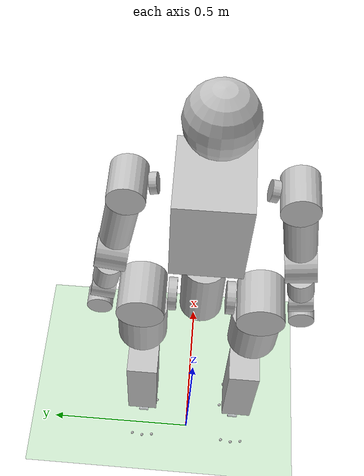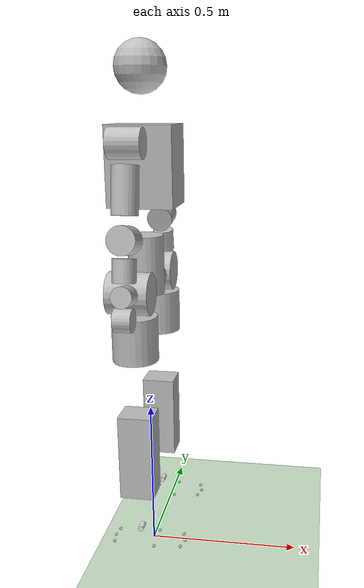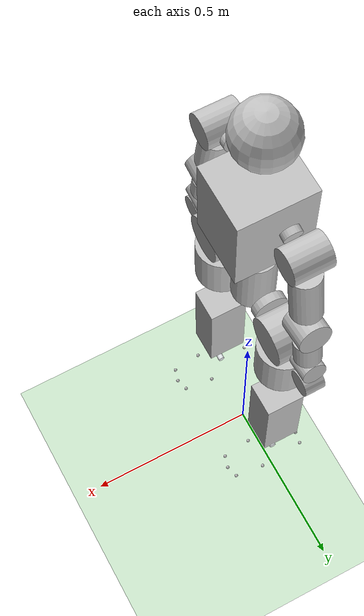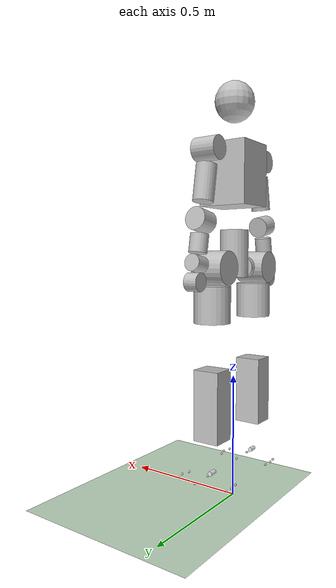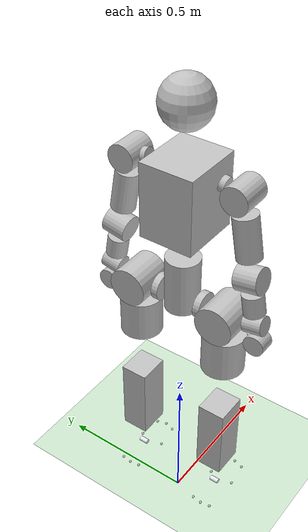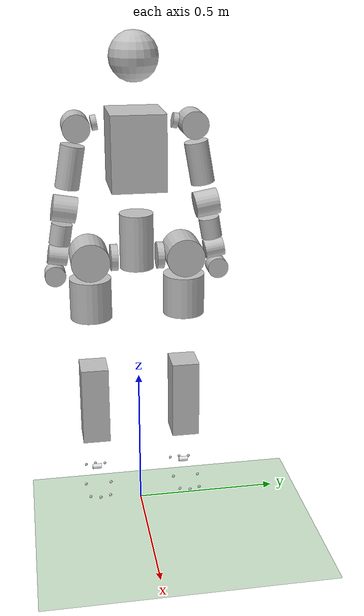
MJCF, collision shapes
<mujoco model="tsts2">
    <compiler angle="radian" meshdir="../meshes/"/>

    <default>
        <default class="tsts2">
            <geom friction="0.5" margin="0.001"/>
            <joint type="hinge" armature="0.1" frictionloss="0.1" limited="true"/>
            <default class="visual">
                <geom type="mesh" contype="0" conaffinity="0" group="2" material="dark"/>
            </default>
            <default class="collision">
                <geom group="0" type="capsule" mass="0" density="0" />
                <default class="foot">
                    <geom type="sphere" priority="1" solimp="0.015 1 0.031" condim="6"  friction="0.8 0.02 0.01" size="0.025" pos="0.019 0 -0.105" quat="1 0 0 0" rgba="0.189804 0.176471 0.129412 1" />
                </default>
            </default>
            <site size="0.001" rgba="0.5 0.5 0.5 0.3" group="4"/>
        </default>
    </default>

    <asset>
        <mesh name="pelvis" content_type="model/stl" file="pelvis.STL"/>
        <mesh name="left_hip_pitch_link" content_type="model/stl" file="left_hip_pitch_link.STL"/>
        <mesh name="left_hip_roll_link" content_type="model/stl" file="left_hip_roll_link.STL"/>
        <mesh name="left_hip_yaw_link" content_type="model/stl" file="left_hip_yaw_link.STL"/>
        <mesh name="left_knee_link" content_type="model/stl" file="left_knee_link.STL"/>
        <mesh name="left_ankle_pitch_link" content_type="model/stl" file="left_ankle_pitch_link.STL"/>
        <mesh name="left_ankle_roll_link" content_type="model/stl" file="left_ankle_roll_link.STL"/>
        <mesh name="right_hip_pitch_link" content_type="model/stl" file="right_hip_pitch_link.STL"/>
        <mesh name="right_hip_roll_link" content_type="model/stl" file="right_hip_roll_link.STL"/>
        <mesh name="right_hip_yaw_link" content_type="model/stl" file="right_hip_yaw_link.STL"/>
        <mesh name="right_knee_link" content_type="model/stl" file="right_knee_link.STL"/>
        <mesh name="right_ankle_pitch_link" content_type="model/stl" file="right_ankle_pitch_link.STL"/>
        <mesh name="right_ankle_roll_link" content_type="model/stl" file="right_ankle_roll_link.STL"/>
        <mesh name="torso_link" content_type="model/stl" file="torso_link.STL"/>
        <mesh name="head_link" content_type="model/stl" file="head_link.STL"/>
        <mesh name="left_shoulder_pitch_link" content_type="model/stl" file="left_shoulder_pitch_link.STL"/>
        <mesh name="left_shoulder_roll_link" content_type="model/stl" file="left_shoulder_roll_link.STL"/>
        <mesh name="left_shoulder_yaw_link" content_type="model/stl" file="left_shoulder_yaw_link.STL"/>
        <mesh name="left_elbow_link" content_type="model/stl" file="left_elbow_link.STL"/>
        <mesh name="left_wrist_yaw_link" content_type="model/stl" file="left_wrist_yaw_link.STL"/>
        <mesh name="left_wrist_pitch_link" content_type="model/stl" file="left_wrist_pitch_link.STL"/>
        <mesh name="left_wrist_roll_link" content_type="model/stl" file="left_wrist_roll_link.STL"/>
        <mesh name="right_shoulder_pitch_link" content_type="model/stl" file="right_shoulder_pitch_link.STL"/>
        <mesh name="right_shoulder_roll_link" content_type="model/stl" file="right_shoulder_roll_link.STL"/>
        <mesh name="right_shoulder_yaw_link" content_type="model/stl" file="right_shoulder_yaw_link.STL"/>
        <mesh name="right_elbow_link" content_type="model/stl" file="right_elbow_link.STL"/>
        <mesh name="right_wrist_yaw_link" content_type="model/stl" file="right_wrist_yaw_link.STL"/>
        <mesh name="right_wrist_pitch_link" content_type="model/stl" file="right_wrist_pitch_link.STL"/>
        <mesh name="right_wrist_roll_link" content_type="model/stl" file="right_wrist_roll_link.STL"/>

        <texture name="texplane" type="2d" builtin="checker" rgb1=".2 .3 .4" rgb2=".1 0.15 0.2" width="100" height="100"/>
        <material name="MatPlane" reflectance="0.5" texture="texplane" texrepeat="1 1" texuniform="true"/>
    </asset>

    <worldbody>

            <geom name="floor" friction="1 .1 .1" pos="0 0 0" size="500 500 0.125" type="plane" material="MatPlane" condim="3" conaffinity="1" contype="1" group="2" rgba="0.8 0.9 0.8 1"></geom>

            <light cutoff="100" diffuse="1 1 1" dir="-0 0 -1.3" directional="true" exponent="1" pos="0 0 1.3" specular=".1 .1 .1" castshadow="false"/>
            <body name="pelvis" pos="0 0 1.0" childclass="tsts2">
                <inertial pos="-3.1659855E-03  0.0000000 -0.0930236E-01" quat="0.498303 0.499454 -0.500496 0.501741" mass="6.7964049" diaginertia="2.2011165e-02 3.9641975e-02 3.5762219e-02" />
                <joint name="floating_base_joint" type="free" limited="false" actuatorfrclimited="false"/>
                <site name='imu' size='0.01' pos='0.0 0 0.0'/>

                <!-- fill below content to finish urdf2mjcf -->

                <geom pos="0 0 0.1" quat="1 0 0 0" type="mesh" contype="0" conaffinity="0" group="1" density="0" rgba="0.752941 0.752941 0.752941 1" mesh="pelvis"/>
                <geom size="0.0572 0.09415" type="cylinder" rgba="0.752941 0.752941 0.752941 1"/>
                <body name="left_hip_pitch_link" pos="0 0.068 -0.056">
                    <inertial pos="-0.0201683 0.0822161 0" quat="0.704101 0.704101 0.0651255 0.0651255" mass="2.42773" diaginertia="0.00623422 0.00516186 0.00352913"/>
                    <joint name="left_hip_pitch_joint" pos="0 0 0" axis="0 1 0" range="-1.5 1.5" actuatorfrcrange="-300 300" damping="5"/>
                    <geom type="mesh" contype="0" conaffinity="0" group="1" density="0" rgba="0.752941 0.752941 0.752941 1" mesh="left_hip_pitch_link"/>
                    <geom size="0.045 0.0117" pos="0 0.01 0" quat="0.707388 0.706825 0 0" type="cylinder" rgba="0.752941 0.752941 0.752941 1"/>
                    <body name="left_hip_roll_link" pos="0 0.092 0">
                        <inertial pos="-0.00231162 -0.00036364 -0.081422" quat="0.986446 -0.0128273 0.163575 0.00198067" mass="3.15516" diaginertia="0.0127869 0.0114832 0.00651926"/>
                        <joint name="left_hip_roll_joint" pos="0 0 0" axis="1 0 0" range="-0.25 2.8" actuatorfrcrange="-300 300" damping="5"/>
                        <geom type="mesh" contype="0" conaffinity="0" group="1" density="0" rgba="0.752941 0.752941 0.752941 1" mesh="left_hip_roll_link"/>
                        <geom size="0.065 0.065" pos="-0.01 0 0" quat="0.707388 0 0.706825 0" type="cylinder" rgba="0.752941 0.752941 0.752941 1"/>
                        <body name="left_hip_yaw_link" pos="0 0 -0.1395">
                            <inertial pos="0.00642805 -0.00358464 -0.184496" quat="0.693667 -0.00118225 0.0183074 0.720062" mass="3.35223" diaginertia="0.0396254 0.0381203 0.0071533"/>
                            <joint name="left_hip_yaw_joint" pos="0 0 0" axis="0 0 1" range="-1.2 2.6" actuatorfrcrange="-300 300" damping="5"/>
                            <geom type="mesh" contype="0" conaffinity="0" group="1" density="0" rgba="0.752941 0.752941 0.752941 1" mesh="left_hip_yaw_link"/>
                            <geom size="0.0708 0.071" type="cylinder" rgba="0.752941 0.752941 0.752941 1"/>
                            <body name="left_knee_link" pos="0 0 -0.26">
                                <inertial pos="0.00978041 -0.00121598 -0.110007" quat="0.690926 0.000275879 -0.0112168 0.722838" mass="5.38282" diaginertia="0.0720794 0.0710269 0.00814125"/>
                                <joint name="left_knee_joint" pos="0 0 0" axis="0 1 0" range="0 2.27" actuatorfrcrange="-300 300" damping="5"/>
                                <geom type="mesh" contype="0" conaffinity="0" group="1" density="0" rgba="0.752941 0.752941 0.752941 1" mesh="left_knee_link"/>
                                <geom size="0.0545 0.0475 0.139" pos="0 0 -0.13" type="box" rgba="0.752941 0.752941 0.752941 1"/>
                                <body name="left_ankle_pitch_link" pos="0 0 -0.4">
                                    <inertial pos="-0.000310026 1.10617e-05 -0.0042516" quat="0.691176 0.691169 0.149264 -0.14927" mass="0.163759" diaginertia="5.58316e-05 5.50037e-05 2.3119e-05"/>
                                    <joint name="left_ankle_pitch_joint" pos="0 0 0" axis="0 1 0" range="-1 0.43" actuatorfrcrange="-200 200" damping="2"/>
                                    <geom type="mesh" contype="0" conaffinity="0" group="1" density="0" rgba="0.898039 0.917647 0.929412 1" mesh="left_ankle_pitch_link"/>
                                    <geom size="0.009 0.016" quat="0.707388 0.706825 0 0" type="cylinder" rgba="0.898039 0.917647 0.929412 1"/>
                                    <body name="left_ankle_roll_link" pos="0 0 -0.01">
                                        <inertial pos="0.0178042 0 -0.022945" quat="0 0.734587 0 0.678514" mass="0.328402" diaginertia="0.00147826 0.00138491 0.000224893"/>
                                        <joint name="left_ankle_roll_joint" pos="0 0 0" axis="1 0 0" range="-0.43 0.43" actuatorfrcrange="-200 200" damping="2"/>
                                        <geom type="mesh" contype="0" conaffinity="0" group="1" density="0" rgba="0.752941 0.752941 0.752941 1" mesh="left_ankle_roll_link"/>
                                        <geom size="0.005" pos="-0.085 0.035 -0.03" rgba="0.752941 0.752941 0.752941 1"/>
                                        <geom size="0.005" pos="-0.085 -0.035 -0.03" rgba="0.752941 0.752941 0.752941 1"/>
                                        <geom size="0.005" pos="0.135 0.035 -0.03" rgba="0.752941 0.752941 0.752941 1"/>
                                        <geom size="0.005" pos="0.135 -0.035 -0.03" rgba="0.752941 0.752941 0.752941 1"/>
                                        <geom size="0.005" pos="0.05 -0.045 -0.03" rgba="0.752941 0.752941 0.752941 1"/>
                                        <geom size="0.005" pos="0.05 0.045 -0.03" rgba="0.752941 0.752941 0.752941 1"/>
                                        <geom size="0.005" pos="0.145 0 -0.03" rgba="0.752941 0.752941 0.752941 1"/>
                                        <geom size="0.005" pos="-0.09 0 -0.03" rgba="0.752941 0.752941 0.752941 1"/>
                                    </body>
                                </body>
                            </body>
                        </body>
                    </body>
                </body>
                <body name="right_hip_pitch_link" pos="0 -0.068 -0.056">
                    <inertial pos="-0.0201683 -0.0822161 0" quat="0.704101 0.704101 -0.0651255 -0.0651255" mass="2.42773" diaginertia="0.00623422 0.00516186 0.00352913"/>
                    <joint name="right_hip_pitch_joint" pos="0 0 0" axis="0 1 0" range="-1.5 1.5" actuatorfrcrange="-300 300" damping="5"/>
                    <geom type="mesh" contype="0" conaffinity="0" group="1" density="0" rgba="0.752941 0.752941 0.752941 1" mesh="right_hip_pitch_link"/>
                    <geom size="0.045 0.0117" pos="0 -0.01 0" quat="0.707388 0.706825 0 0" type="cylinder" rgba="0.752941 0.752941 0.752941 1"/>
                    <body name="right_hip_roll_link" pos="0 -0.092 0">
                        <inertial pos="-0.00231164 0.000363676 -0.0814221" quat="0.986446 0.0128271 0.163575 -0.00197953" mass="3.15516" diaginertia="0.0127868 0.0114832 0.00651926"/>
                        <joint name="right_hip_roll_joint" pos="0 0 0" axis="1 0 0" range="-2.8 0.25" actuatorfrcrange="-300 300" damping="5"/>
                        <geom type="mesh" contype="0" conaffinity="0" group="1" density="0" rgba="0.752941 0.752941 0.752941 1" mesh="right_hip_roll_link"/>
                        <geom size="0.065 0.065" pos="-0.01 0 0" quat="0.707388 0 0.706825 0" type="cylinder" rgba="0.752941 0.752941 0.752941 1"/>
                        <body name="right_hip_yaw_link" pos="0 0 -0.1395">
                            <inertial pos="0.00642805 0.00358464 -0.184496" quat="0.720062 0.0183074 -0.00118225 0.693667" mass="3.35223" diaginertia="0.0396254 0.0381203 0.0071533"/>
                            <joint name="right_hip_yaw_joint" pos="0 0 0" axis="0 0 1" range="-2.6 1.2" actuatorfrcrange="-300 300" damping="5"/>
                            <geom type="mesh" contype="0" conaffinity="0" group="1" density="0" rgba="0.752941 0.752941 0.752941 1" mesh="right_hip_yaw_link"/>
                            <geom size="0.0708 0.071" type="cylinder" rgba="0.752941 0.752941 0.752941 1"/>
                            <body name="right_knee_link" pos="0 0 -0.26">
                                <inertial pos="0.00978041 0.00121598 -0.110007" quat="0.722838 -0.0112168 0.00027589 0.690926" mass="5.38282" diaginertia="0.0720794 0.0710269 0.00814125"/>
                                <joint name="right_knee_joint" pos="0 0 0" axis="0 1 0" range="0 2.27" actuatorfrcrange="-300 300" damping="5"/>
                                <geom type="mesh" contype="0" conaffinity="0" group="1" density="0" rgba="0.752941 0.752941 0.752941 1" mesh="right_knee_link"/>
                                <geom size="0.0545 0.0475 0.139" pos="0 0 -0.13" type="box" rgba="0.752941 0.752941 0.752941 1"/>
                                <body name="right_ankle_pitch_link" pos="0 0 -0.4">
                                    <inertial pos="-0.000310026 1.10617e-05 -0.0042516" quat="0.691176 0.691169 0.149264 -0.14927" mass="0.163759" diaginertia="5.58316e-05 5.50037e-05 2.3119e-05"/>
                                    <joint name="right_ankle_pitch_joint" pos="0 0 0" axis="0 1 0" range="-1 0.43" actuatorfrcrange="-200 200" damping="2"/>
                                    <geom type="mesh" contype="0" conaffinity="0" group="1" density="0" rgba="0.898039 0.917647 0.929412 1" mesh="right_ankle_pitch_link"/>
                                    <geom size="0.009 0.016" quat="0.707388 0.706825 0 0" type="cylinder" rgba="0.898039 0.917647 0.929412 1"/>
                                    <body name="right_ankle_roll_link" pos="0 0 -0.01">
                                        <inertial pos="0.0178042 0 -0.022945" quat="0 0.734587 0 0.678514" mass="0.328402" diaginertia="0.00147826 0.00138491 0.000224893"/>
                                        <joint name="right_ankle_roll_joint" pos="0 0 0" axis="1 0 0" range="-0.43 0.43" actuatorfrcrange="-200 200" damping="2"/>
                                        <geom type="mesh" contype="0" conaffinity="0" group="1" density="0" rgba="0.752941 0.752941 0.752941 1" mesh="right_ankle_roll_link"/>
                                        <geom size="0.005" pos="-0.085 0.035 -0.03" rgba="0.752941 0.752941 0.752941 1"/>
                                        <geom size="0.005" pos="-0.085 -0.035 -0.03" rgba="0.752941 0.752941 0.752941 1"/>
                                        <geom size="0.005" pos="0.135 0.035 -0.03" rgba="0.752941 0.752941 0.752941 1"/>
                                        <geom size="0.005" pos="0.135 -0.035 -0.03" rgba="0.752941 0.752941 0.752941 1"/>
                                        <geom size="0.005" pos="0.05 -0.045 -0.03" rgba="0.752941 0.752941 0.752941 1"/>
                                        <geom size="0.005" pos="0.05 0.045 -0.03" rgba="0.752941 0.752941 0.752941 1"/>
                                        <geom size="0.005" pos="0.145 0 -0.03" rgba="0.752941 0.752941 0.752941 1"/>
                                        <geom size="0.005" pos="-0.09 0 -0.03" rgba="0.752941 0.752941 0.752941 1"/>
                                    </body>
                                </body>
                            </body>
                        </body>
                    </body>
                </body>
                <body name="torso_link" pos="0 0 0.1">
                    <inertial pos="-0.00142182 0.000240176 0.254143" quat="0.999922 -0.00157977 -0.0120569 0.00275247" mass="11.5909" diaginertia="0.204443 0.180554 0.0681115"/>
                    <geom type="mesh" contype="0" conaffinity="0" group="1" density="0" rgba="0.752941 0.752941 0.752941 1" mesh="torso_link"/>
                    <geom size="0.1025 0.089 0.123" pos="0.0065 0 0.21" type="box" rgba="0.752941 0.752941 0.752941 1"/>
                    <geom pos="0 0 0.3875" quat="1 0 0 0" type="mesh" contype="0" conaffinity="0" group="1" density="0" rgba="0.752941 0.752941 0.752941 1" mesh="head_link"/>
                    <geom size="0.08" pos="0 0 0.4975" rgba="0.752941 0.752941 0.752941 1"/>
                    <body name="left_shoulder_pitch_link" pos="0 0.12095 0.29712" quat="0.996195 -0.0871543 0 0">
                        <inertial pos="-0.0254614 0.0534578 -5.75839e-07" quat="0.702171 0.702182 0.0833408 0.0833656" mass="0.173115" diaginertia="0.000197536 0.000152139 9.0815e-05"/>
                        <joint name="left_shoulder_pitch_joint" pos="0 0 0" axis="0 1 0" range="-3 3" actuatorfrcrange="-100 100" damping="2"/>
                        <geom type="mesh" contype="0" conaffinity="0" group="1" density="0" rgba="0.752941 0.752941 0.752941 1" mesh="left_shoulder_pitch_link"/>
                        <geom size="0.0244 0.009" pos="0 0.01 0" quat="0.707388 0.706825 0 0" type="cylinder" rgba="0.752941 0.752941 0.752941 1"/>
                        <body name="left_shoulder_roll_link" pos="0 0.0695 0" quat="0.9848 0.1736 0 0">
                            <inertial pos="0.00112286 -4.52209e-05 -0.067975" quat="0.999793 0.00155022 -0.0201616 0.00208659" mass="0.364745" diaginertia="0.000924429 0.000788402 0.000365403"/>
                            <joint name="left_shoulder_roll_joint" pos="0 0 0" axis="1 0 0" range="-0.12 2.3" actuatorfrcrange="-100 100" damping="2"/>
                            <geom type="mesh" contype="0" conaffinity="0" group="1" density="0" rgba="0.752941 0.752941 0.752941 1" mesh="left_shoulder_roll_link"/>
                            <geom size="0.0447 0.05" quat="0.707388 0 0.706825 0" type="cylinder" rgba="0.752941 0.752941 0.752941 1"/>
                            <body name="left_shoulder_yaw_link" pos="0 0 -0.13">
                                <inertial pos="-0.00081064 -0.00072673 -0.105837" quat="0.693666 -0.00598888 0.000250759 0.720272" mass="1.12432" diaginertia="0.00391994 0.00383464 0.000723036"/>
                                <joint name="left_shoulder_yaw_joint" pos="0 0 0" axis="0 0 1" range="-1.9 1.9" actuatorfrcrange="-100 100" damping="2"/>
                                <geom type="mesh" contype="0" conaffinity="0" group="1" density="0" rgba="0.752941 0.752941 0.752941 1" mesh="left_shoulder_yaw_link"/>
                                <geom size="0.03968 0.07" type="cylinder" rgba="0.752941 0.752941 0.752941 1"/>
                                <body name="left_elbow_link" pos="0 0 -0.14" quat="1 0 0 0">
                                    <inertial pos="-0.00161192 -0.00200635 -0.143794" quat="0.994703 -0.00156229 0.00308789 0.10273" mass="1.46625" diaginertia="0.00805816 0.00803982 0.000877537"/>
                                    <joint name="left_elbow_joint" pos="0 0 0" axis="0 1 0" range="-0.83 1.57" actuatorfrcrange="-100 100" damping="2"/>
                                    <geom type="mesh" contype="0" conaffinity="0" group="1" density="0" rgba="0.752941 0.752941 0.752941 1" mesh="left_elbow_link"/>
                                    <geom size="0.043 0.0395" quat="0.707388 0.706825 0 0" type="cylinder" rgba="0.752941 0.752941 0.752941 1"/>
                                    <geom pos="0 0 -0.0955" quat="1 0 0 0" type="mesh" contype="0" conaffinity="0" group="1" density="0" rgba="0.752941 0.752941 0.752941 1" mesh="left_wrist_yaw_link"/>
                                    <geom size="0.035 0.035" pos="0 0 -0.0855" type="cylinder" rgba="0.752941 0.752941 0.752941 1"/>
                                    <geom pos="0 0 -0.16" type="mesh" contype="0" conaffinity="0" group="1" density="0" rgba="0.752941 0.752941 0.752941 1" mesh="left_wrist_pitch_link"/>
                                    <geom size="0.032 0.032" pos="0 0 -0.16" quat="0.707388 0.706825 0 0" type="cylinder" rgba="0.752941 0.752941 0.752941 1"/>
                                    <geom pos="0 0 -0.228" quat="1 0 0 0" type="mesh" contype="0" conaffinity="0" group="1" density="0" rgba="0.752941 0.752941 0.752941 1" mesh="left_wrist_roll_link"/>
                                    <geom size="0.035 0.027" pos="0 0 -0.228" quat="0.707388 0 0.706825 0" type="cylinder" rgba="0.752941 0.752941 0.752941 1"/>
                                </body>
                            </body>
                        </body>
                    </body>
                    <body name="right_shoulder_pitch_link" pos="0 -0.12095 0.29712" quat="0.996195 0.0871543 0 0">
                        <inertial pos="-0.0254614 -0.0534578 6.93877e-07" quat="0.702166 0.702188 -0.0833419 -0.0833635" mass="0.173115" diaginertia="0.00019754 0.00015214 9.08183e-05"/>
                        <joint name="right_shoulder_pitch_joint" pos="0 0 0" axis="0 1 0" range="-3 3" actuatorfrcrange="-100 100" damping="2"/>
                        <geom type="mesh" contype="0" conaffinity="0" group="1" density="0" rgba="0.752941 0.752941 0.752941 1" mesh="right_shoulder_pitch_link"/>
                        <geom size="0.0244 0.009" pos="0 -0.01 0" quat="0.707388 0.706825 0 0" type="cylinder" rgba="0.752941 0.752941 0.752941 1"/>
                        <body name="right_shoulder_roll_link" pos="0 -0.0695 0" quat="0.9848 -0.1736 0 0">
                            <inertial pos="0.00112483 5.05515e-05 -0.0679738" quat="0.999794 -0.0015408 -0.0201519 -0.00208832" mass="0.364802" diaginertia="0.00092448 0.000788455 0.000365414"/>
                            <joint name="right_shoulder_roll_joint" pos="0 0 0" axis="1 0 0" range="-2.3 0.12" actuatorfrcrange="-100 100" damping="2"/>
                            <geom type="mesh" contype="0" conaffinity="0" group="1" density="0" rgba="0.752941 0.752941 0.752941 1" mesh="right_shoulder_roll_link"/>
                            <geom size="0.0447 0.05" quat="0.707388 0 0.706825 0" type="cylinder" rgba="0.752941 0.752941 0.752941 1"/>
                            <body name="right_shoulder_yaw_link" pos="0 0 -0.13">
                                <inertial pos="-0.00081059 0.00072671 -0.105749" quat="0.720253 0.0003316 -0.00594525 0.693686" mass="1.12432" diaginertia="0.00391319 0.00382787 0.000723043"/>
                                <joint name="right_shoulder_yaw_joint" pos="0 0 0" axis="0 0 1" range="-1.9 1.9" actuatorfrcrange="-100 100" damping="2"/>
                                <geom type="mesh" contype="0" conaffinity="0" group="1" density="0" rgba="0.752941 0.752941 0.752941 1" mesh="right_shoulder_yaw_link"/>
                                <geom size="0.03968 0.07" type="cylinder" rgba="0.752941 0.752941 0.752941 1"/>
                                <body name="right_elbow_link" pos="0 0 -0.14" quat="1 0 0 0">
                                    <inertial pos="-0.00166139 0.00190387 -0.143862" quat="0.996998 0.00117118 0.0037703 -0.0773223" mass="1.46624" diaginertia="0.00807475 0.00805425 0.000878785"/>
                                    <joint name="right_elbow_joint" pos="0 0 0" axis="0 1 0" range="-0.83 1.57" actuatorfrcrange="-100 100" damping="2"/>
                                    <geom type="mesh" contype="0" conaffinity="0" group="1" density="0" rgba="0.752941 0.752941 0.752941 1" mesh="right_elbow_link"/>
                                    <geom size="0.043 0.0395" quat="0.707388 0.706825 0 0" type="cylinder" rgba="0.752941 0.752941 0.752941 1"/>
                                    <geom pos="0 0 -0.0955" quat="1 0 0 0" type="mesh" contype="0" conaffinity="0" group="1" density="0" rgba="0.752941 0.752941 0.752941 1" mesh="right_wrist_yaw_link"/>
                                    <geom size="0.035 0.035" pos="0 0 -0.0855" type="cylinder" rgba="0.752941 0.752941 0.752941 1"/>
                                    <geom pos="0 0 -0.16" type="mesh" contype="0" conaffinity="0" group="1" density="0" rgba="0.752941 0.752941 0.752941 1" mesh="right_wrist_pitch_link"/>
                                    <geom size="0.032 0.032" pos="0 0 -0.16" quat="0.707388 0.706825 0 0" type="cylinder" rgba="0.752941 0.752941 0.752941 1"/>
                                    <geom pos="0 0 -0.228" quat="1 0 0 0" type="mesh" contype="0" conaffinity="0" group="1" density="0" rgba="0.752941 0.752941 0.752941 1" mesh="right_wrist_roll_link"/>
                                    <geom size="0.035 0.027" pos="0 0 -0.228" quat="0.707388 0 0.706825 0" type="cylinder" rgba="0.752941 0.752941 0.752941 1"/>
                                </body>
                            </body>
                        </body>
                    </body>
                </body>

                <!-- fill above segment -->
            </body>
        </worldbody>

        <actuator>
            <position name="left_hip_pitch_joint" joint="left_hip_pitch_joint" kp="250" />
            <position name="left_hip_roll_joint" joint="left_hip_roll_joint"  kp="250" />
            <position name="left_hip_yaw_joint" joint="left_hip_yaw_joint" kp="250" />
            <position name="left_knee_joint" joint="left_knee_joint"   kp="200" />
            <position name="left_ankle_pitch_joint" joint="left_ankle_pitch_joint"   kp="30" />
            <position name="left_ankle_roll_joint" joint="left_ankle_roll_joint"   kp="30" />

            <position name="right_hip_pitch_joint" joint="right_hip_pitch_joint"   kp="250" />
            <position name="right_hip_roll_joint" joint="right_hip_roll_joint"   kp="250" />
            <position name="right_hip_yaw_joint" joint="right_hip_yaw_joint"   kp="200" />
            <position name="right_knee_joint" joint="right_knee_joint"   kp="250" />
            <position name="right_ankle_pitch_joint" joint="right_ankle_pitch_joint"   kp="30" />
            <position name="right_ankle_roll_joint" joint="right_ankle_roll_joint"   kp="30" />

            <position name="left_shoulder_pitch_joint" joint="left_shoulder_pitch_joint"   kp="60" />
            <position name="left_shoulder_roll_joint" joint="left_shoulder_roll_joint"   kp="60" />
            <position name="left_shoulder_yaw_joint" joint="left_shoulder_yaw_joint"   kp="30" />
            <position name="left_elbow_joint" joint="left_elbow_joint"   kp="10" />

            <position name="right_shoulder_pitch_joint" joint="right_shoulder_pitch_joint"   kp="60" />
            <position name="right_shoulder_roll_joint" joint="right_shoulder_roll_joint"   kp="60" />
            <position name="right_shoulder_yaw_joint" joint="right_shoulder_yaw_joint"   kp="30" />
            <position name="right_elbow_joint" joint="right_elbow_joint"   kp="10" />

        </actuator>

        <sensor>
            <jointpos joint="left_hip_pitch_joint" user="6"/>
            <jointpos joint="left_hip_roll_joint" user="6"/>
            <jointpos joint="left_hip_yaw_joint" user="6"/>
            <jointpos joint="left_knee_joint" user="6"/>
            <jointpos joint="left_ankle_pitch_joint" user="6"/>
            <jointpos joint="left_ankle_roll_joint" user="6"/>
            <jointpos joint="right_hip_pitch_joint" user="6"/>
            <jointpos joint="right_hip_roll_joint" user="6"/>
            <jointpos joint="right_hip_yaw_joint" user="6"/>
            <jointpos joint="right_knee_joint" user="6"/>
            <jointpos joint="right_ankle_pitch_joint" user="6"/>
            <jointpos joint="right_ankle_roll_joint" user="6"/>
            <jointpos joint="left_shoulder_pitch_joint" user="6"/>
            <jointpos joint="left_shoulder_roll_joint" user="6"/>
            <jointpos joint="left_shoulder_yaw_joint" user="6"/>
            <jointpos joint="left_elbow_joint" user="6"/>
            <jointpos joint="right_shoulder_pitch_joint" user="6"/>
            <jointpos joint="right_shoulder_roll_joint" user="6"/>
            <jointpos joint="right_shoulder_yaw_joint" user="6"/>
            <jointpos joint="right_elbow_joint" user="6"/>

            <jointvel joint="left_hip_pitch_joint" user="6"/>
            <jointvel joint="left_hip_roll_joint" user="6"/>
            <jointvel joint="left_hip_yaw_joint" user="6"/>
            <jointvel joint="left_knee_joint" user="6"/>
            <jointvel joint="left_ankle_pitch_joint" user="6"/>
            <jointvel joint="left_ankle_roll_joint" user="6"/>
            <jointvel joint="right_hip_pitch_joint" user="6"/>
            <jointvel joint="right_hip_roll_joint" user="6"/>
            <jointvel joint="right_hip_yaw_joint" user="6"/>
            <jointvel joint="right_knee_joint" user="6"/>
            <jointvel joint="right_ankle_pitch_joint" user="6"/>
            <jointvel joint="right_ankle_roll_joint" user="6"/>
            <jointvel joint="left_shoulder_pitch_joint" user="6"/>
            <jointvel joint="left_shoulder_roll_joint" user="6"/>
            <jointvel joint="left_shoulder_yaw_joint" user="6"/>
            <jointvel joint="left_elbow_joint" user="6"/>
            <jointvel joint="right_shoulder_pitch_joint" user="6"/>
            <jointvel joint="right_shoulder_roll_joint" user="6"/>
            <jointvel joint="right_shoulder_yaw_joint" user="6"/>
            <jointvel joint="right_elbow_joint" user="6"/>

            <framequat     name='orientation' objtype='site' noise='0.001' objname='imu'/>
            <framepos     name='position' objtype='site' noise='0.001' objname='imu'/>
            <gyro          name='angular-velocity'    site='imu' noise='0.005' cutoff='34.9'/>
            <velocimeter   name='linear-velocity'     site='imu' noise='0.001' cutoff='30'/>
        </sensor>

</mujoco>
